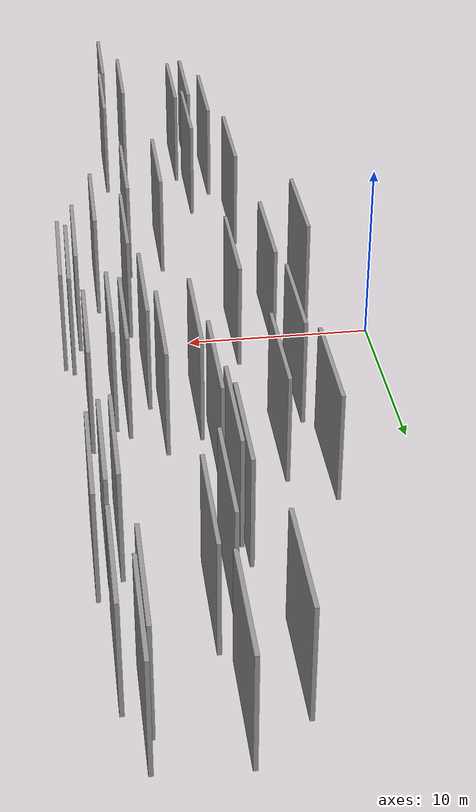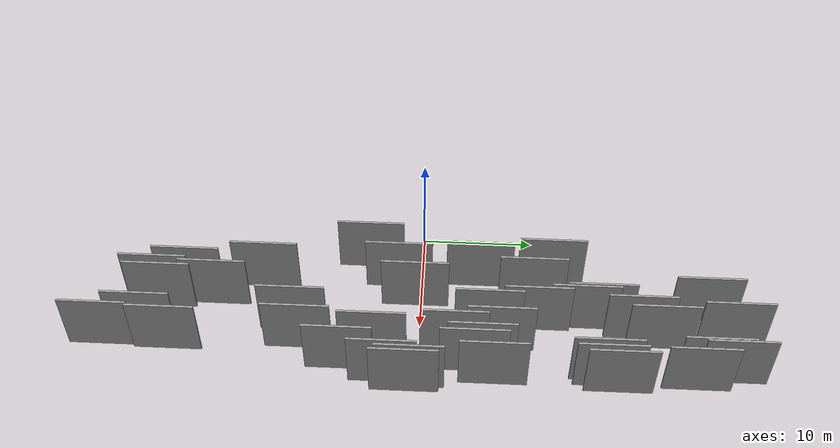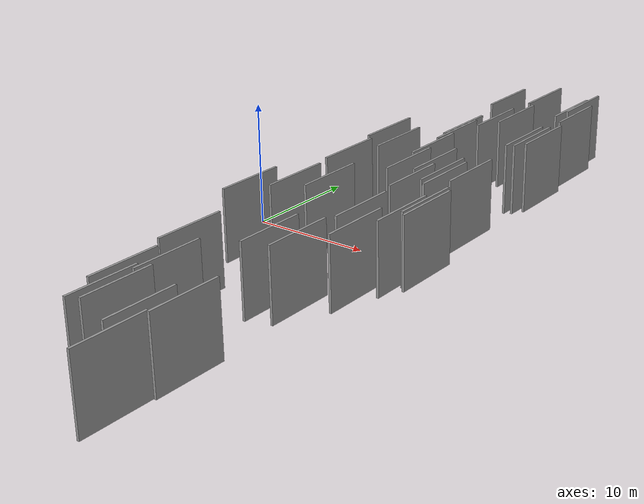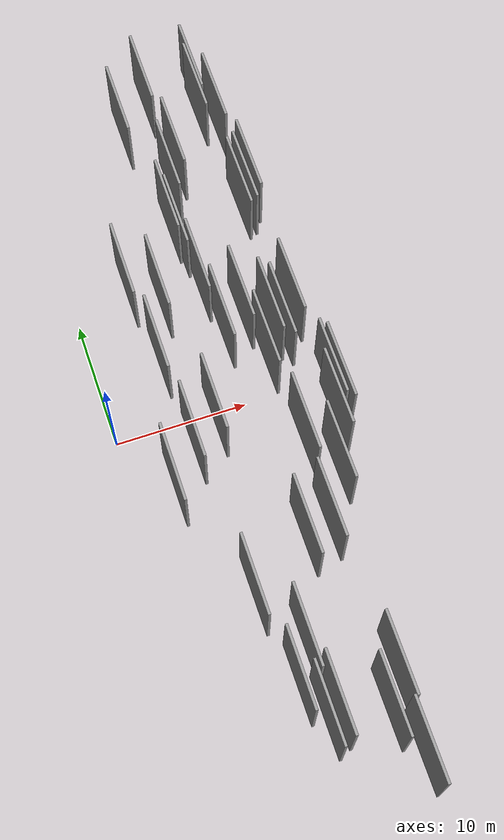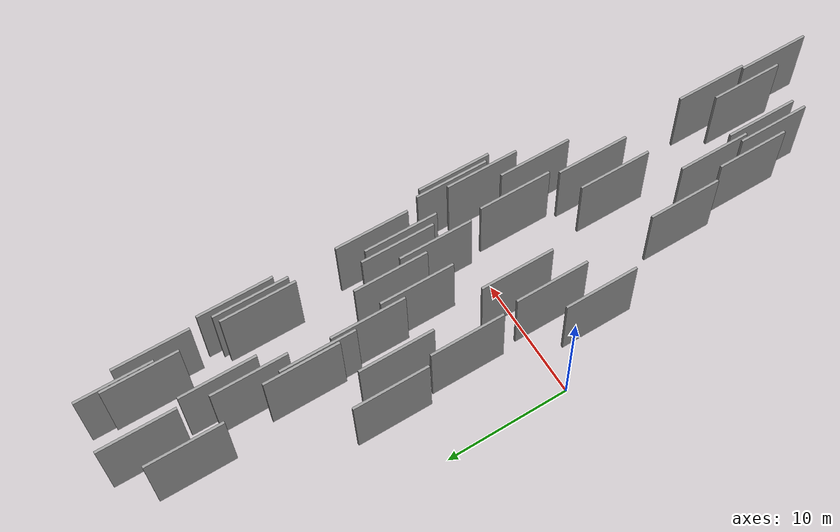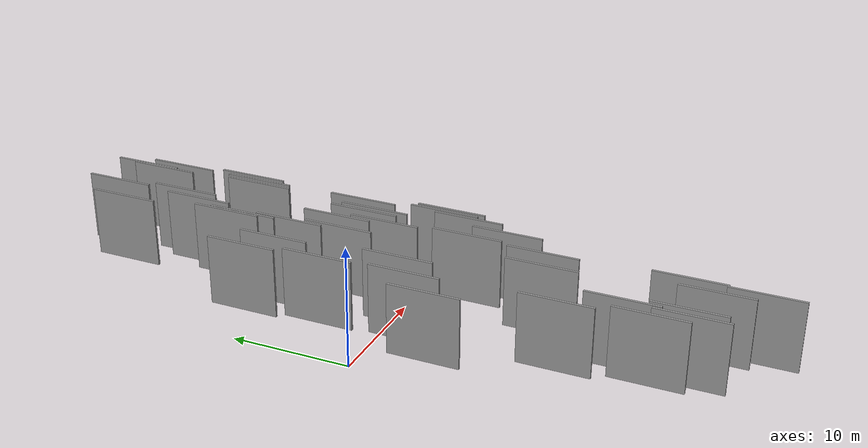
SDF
<sdf version="1.6">
 <world name="default">
  <scene>
   <sky><clouds><speed>12</speed></clouds></sky>
   <ambient>0.4 0.4 0.4 1</ambient>
   <background>0.7 0.7 0.7 1</background>
   <shadows>1</shadows>
  </scene>
  <gravity>0 0 -9.8066</gravity>
  <magnetic_field>6e-06 2.3e-05 -4.2e-05</magnetic_field>
  <physics default="0" name="default_physics" type="ode">
   <ode>
    <solver>
     <type>quick</type>
     <iters>10</iters>
     <sor>1.0</sor>
     <use_dynamic_moi_rescaling>0</use_dynamic_moi_rescaling>
    </solver>
    <constraints>
     <cfm>0</cfm>
     <erp>0.2</erp>
     <contact_max_correcting_vel>100</contact_max_correcting_vel>
     <contact_surface_layer>0.001</contact_surface_layer>
    </constraints>
   </ode>
   <max_step_size>0.004</max_step_size>
   <real_time_factor>1</real_time_factor>
   <real_time_update_rate>250</real_time_update_rate>
  </physics>
  <light name="sun" type="directional">
   <pose>0 0 10 0 0 0</pose>
   <diffuse>0.8 0.8 0.8 1</diffuse>
   <specular>0.2 0.2 0.2 1</specular>
   <attenuation>
    <range>1000</range>
    <constant>0.9</constant>
    <linear>0.01</linear>
    <quadratic>0.001</quadratic>
   </attenuation>
   <direction>-0.5 0.1 -0.9</direction>
  </light>
  <model name="grey_wall_1">
   <static>1</static>
   <pose>10.3094 19.3402 0.0 0.000000 0.000000 1.570796</pose>
   <link name="link">
    <pose>0 0 3.00 0 0 0</pose>
    <collision name="collision"><geometry><box><size>6.00 0.2 6.00</size></box></geometry></collision>
    <visual name="visual">
     <cast_shadows>0</cast_shadows>
     <geometry><box><size>6.00 0.2 6.00</size></box></geometry>
     <material>
      <script>
       <uri>model://grey_wall/materials/scripts</uri>
       <uri>model://grey_wall/materials/textures</uri>
       <name>vrc/grey_wall</name>
      </script>
     </material>
    </visual>
   </link>
  </model>
  <model name="grey_wall_2">
   <static>1</static>
   <pose>15.5724 24.1488 0.0 0.000000 0.000000 1.570796</pose>
   <link name="link">
    <pose>0 0 3.00 0 0 0</pose>
    <collision name="collision"><geometry><box><size>6.00 0.2 6.00</size></box></geometry></collision>
    <visual name="visual">
     <cast_shadows>0</cast_shadows>
     <geometry><box><size>6.00 0.2 6.00</size></box></geometry>
     <material>
      <script>
       <uri>model://grey_wall/materials/scripts</uri>
       <uri>model://grey_wall/materials/textures</uri>
       <name>vrc/grey_wall</name>
      </script>
     </material>
    </visual>
   </link>
  </model>
  <model name="grey_wall_3">
   <static>1</static>
   <pose>9.4070 14.5130 0.0 0.000000 0.000000 1.570796</pose>
   <link name="link">
    <pose>0 0 3.00 0 0 0</pose>
    <collision name="collision"><geometry><box><size>6.00 0.2 6.00</size></box></geometry></collision>
    <visual name="visual">
     <cast_shadows>0</cast_shadows>
     <geometry><box><size>6.00 0.2 6.00</size></box></geometry>
     <material>
      <script>
       <uri>model://grey_wall/materials/scripts</uri>
       <uri>model://grey_wall/materials/textures</uri>
       <name>vrc/grey_wall</name>
      </script>
     </material>
    </visual>
   </link>
  </model>
  <model name="grey_wall_4">
   <static>1</static>
   <pose>16.1431 17.3992 0.0 0.000000 0.000000 1.570796</pose>
   <link name="link">
    <pose>0 0 3.00 0 0 0</pose>
    <collision name="collision"><geometry><box><size>6.00 0.2 6.00</size></box></geometry></collision>
    <visual name="visual">
     <cast_shadows>0</cast_shadows>
     <geometry><box><size>6.00 0.2 6.00</size></box></geometry>
     <material>
      <script>
       <uri>model://grey_wall/materials/scripts</uri>
       <uri>model://grey_wall/materials/textures</uri>
       <name>vrc/grey_wall</name>
      </script>
     </material>
    </visual>
   </link>
  </model>
  <model name="grey_wall_5">
   <static>1</static>
   <pose>16.0255 -2.9704 0.0 0.000000 0.000000 1.570796</pose>
   <link name="link">
    <pose>0 0 3.00 0 0 0</pose>
    <collision name="collision"><geometry><box><size>6.00 0.2 6.00</size></box></geometry></collision>
    <visual name="visual">
     <cast_shadows>0</cast_shadows>
     <geometry><box><size>6.00 0.2 6.00</size></box></geometry>
     <material>
      <script>
       <uri>model://grey_wall/materials/scripts</uri>
       <uri>model://grey_wall/materials/textures</uri>
       <name>vrc/grey_wall</name>
      </script>
     </material>
    </visual>
   </link>
  </model>
  <model name="grey_wall_6">
   <static>1</static>
   <pose>14.6744 27.3157 0.0 0.000000 0.000000 1.570796</pose>
   <link name="link">
    <pose>0 0 3.00 0 0 0</pose>
    <collision name="collision"><geometry><box><size>6.00 0.2 6.00</size></box></geometry></collision>
    <visual name="visual">
     <cast_shadows>0</cast_shadows>
     <geometry><box><size>6.00 0.2 6.00</size></box></geometry>
     <material>
      <script>
       <uri>model://grey_wall/materials/scripts</uri>
       <uri>model://grey_wall/materials/textures</uri>
       <name>vrc/grey_wall</name>
      </script>
     </material>
    </visual>
   </link>
  </model>
  <model name="grey_wall_7">
   <static>1</static>
   <pose>8.1750 -18.4370 0.0 0.000000 0.000000 1.570796</pose>
   <link name="link">
    <pose>0 0 3.00 0 0 0</pose>
    <collision name="collision"><geometry><box><size>6.00 0.2 6.00</size></box></geometry></collision>
    <visual name="visual">
     <cast_shadows>0</cast_shadows>
     <geometry><box><size>6.00 0.2 6.00</size></box></geometry>
     <material>
      <script>
       <uri>model://grey_wall/materials/scripts</uri>
       <uri>model://grey_wall/materials/textures</uri>
       <name>vrc/grey_wall</name>
      </script>
     </material>
    </visual>
   </link>
  </model>
  <model name="grey_wall_8">
   <static>1</static>
   <pose>14.5243 4.8752 0.0 0.000000 0.000000 1.570796</pose>
   <link name="link">
    <pose>0 0 3.00 0 0 0</pose>
    <collision name="collision"><geometry><box><size>6.00 0.2 6.00</size></box></geometry></collision>
    <visual name="visual">
     <cast_shadows>0</cast_shadows>
     <geometry><box><size>6.00 0.2 6.00</size></box></geometry>
     <material>
      <script>
       <uri>model://grey_wall/materials/scripts</uri>
       <uri>model://grey_wall/materials/textures</uri>
       <name>vrc/grey_wall</name>
      </script>
     </material>
    </visual>
   </link>
  </model>
  <model name="grey_wall_9">
   <static>1</static>
   <pose>16.4626 -0.6088 0.0 0.000000 0.000000 1.570796</pose>
   <link name="link">
    <pose>0 0 3.00 0 0 0</pose>
    <collision name="collision"><geometry><box><size>6.00 0.2 6.00</size></box></geometry></collision>
    <visual name="visual">
     <cast_shadows>0</cast_shadows>
     <geometry><box><size>6.00 0.2 6.00</size></box></geometry>
     <material>
      <script>
       <uri>model://grey_wall/materials/scripts</uri>
       <uri>model://grey_wall/materials/textures</uri>
       <name>vrc/grey_wall</name>
      </script>
     </material>
    </visual>
   </link>
  </model>
  <model name="grey_wall_10">
   <static>1</static>
   <pose>6.5493 9.9806 0.0 0.000000 0.000000 1.570796</pose>
   <link name="link">
    <pose>0 0 3.00 0 0 0</pose>
    <collision name="collision"><geometry><box><size>6.00 0.2 6.00</size></box></geometry></collision>
    <visual name="visual">
     <cast_shadows>0</cast_shadows>
     <geometry><box><size>6.00 0.2 6.00</size></box></geometry>
     <material>
      <script>
       <uri>model://grey_wall/materials/scripts</uri>
       <uri>model://grey_wall/materials/textures</uri>
       <name>vrc/grey_wall</name>
      </script>
     </material>
    </visual>
   </link>
  </model>
  <model name="grey_wall_11">
   <static>1</static>
   <pose>15.8029 6.5562 0.0 0.000000 0.000000 1.570796</pose>
   <link name="link">
    <pose>0 0 3.00 0 0 0</pose>
    <collision name="collision"><geometry><box><size>6.00 0.2 6.00</size></box></geometry></collision>
    <visual name="visual">
     <cast_shadows>0</cast_shadows>
     <geometry><box><size>6.00 0.2 6.00</size></box></geometry>
     <material>
      <script>
       <uri>model://grey_wall/materials/scripts</uri>
       <uri>model://grey_wall/materials/textures</uri>
       <name>vrc/grey_wall</name>
      </script>
     </material>
    </visual>
   </link>
  </model>
  <model name="grey_wall_12">
   <static>1</static>
   <pose>7.5150 -0.5313 0.0 0.000000 0.000000 1.570796</pose>
   <link name="link">
    <pose>0 0 3.00 0 0 0</pose>
    <collision name="collision"><geometry><box><size>6.00 0.2 6.00</size></box></geometry></collision>
    <visual name="visual">
     <cast_shadows>0</cast_shadows>
     <geometry><box><size>6.00 0.2 6.00</size></box></geometry>
     <material>
      <script>
       <uri>model://grey_wall/materials/scripts</uri>
       <uri>model://grey_wall/materials/textures</uri>
       <name>vrc/grey_wall</name>
      </script>
     </material>
    </visual>
   </link>
  </model>
  <model name="grey_wall_13">
   <static>1</static>
   <pose>8.7044 -23.2994 0.0 0.000000 0.000000 1.570796</pose>
   <link name="link">
    <pose>0 0 3.00 0 0 0</pose>
    <collision name="collision"><geometry><box><size>6.00 0.2 6.00</size></box></geometry></collision>
    <visual name="visual">
     <cast_shadows>0</cast_shadows>
     <geometry><box><size>6.00 0.2 6.00</size></box></geometry>
     <material>
      <script>
       <uri>model://grey_wall/materials/scripts</uri>
       <uri>model://grey_wall/materials/textures</uri>
       <name>vrc/grey_wall</name>
      </script>
     </material>
    </visual>
   </link>
  </model>
  <model name="grey_wall_14">
   <static>1</static>
   <pose>11.2874 21.2249 0.0 0.000000 0.000000 1.570796</pose>
   <link name="link">
    <pose>0 0 3.00 0 0 0</pose>
    <collision name="collision"><geometry><box><size>6.00 0.2 6.00</size></box></geometry></collision>
    <visual name="visual">
     <cast_shadows>0</cast_shadows>
     <geometry><box><size>6.00 0.2 6.00</size></box></geometry>
     <material>
      <script>
       <uri>model://grey_wall/materials/scripts</uri>
       <uri>model://grey_wall/materials/textures</uri>
       <name>vrc/grey_wall</name>
      </script>
     </material>
    </visual>
   </link>
  </model>
  <model name="grey_wall_15">
   <static>1</static>
   <pose>10.7463 -11.2296 0.0 0.000000 0.000000 1.570796</pose>
   <link name="link">
    <pose>0 0 3.00 0 0 0</pose>
    <collision name="collision"><geometry><box><size>6.00 0.2 6.00</size></box></geometry></collision>
    <visual name="visual">
     <cast_shadows>0</cast_shadows>
     <geometry><box><size>6.00 0.2 6.00</size></box></geometry>
     <material>
      <script>
       <uri>model://grey_wall/materials/scripts</uri>
       <uri>model://grey_wall/materials/textures</uri>
       <name>vrc/grey_wall</name>
      </script>
     </material>
    </visual>
   </link>
  </model>
  <model name="grey_wall_16">
   <static>1</static>
   <pose>15.5581 16.4812 0.0 0.000000 0.000000 1.570796</pose>
   <link name="link">
    <pose>0 0 3.00 0 0 0</pose>
    <collision name="collision"><geometry><box><size>6.00 0.2 6.00</size></box></geometry></collision>
    <visual name="visual">
     <cast_shadows>0</cast_shadows>
     <geometry><box><size>6.00 0.2 6.00</size></box></geometry>
     <material>
      <script>
       <uri>model://grey_wall/materials/scripts</uri>
       <uri>model://grey_wall/materials/textures</uri>
       <name>vrc/grey_wall</name>
      </script>
     </material>
    </visual>
   </link>
  </model>
  <model name="grey_wall_17">
   <static>1</static>
   <pose>13.8614 5.5422 0.0 0.000000 0.000000 1.570796</pose>
   <link name="link">
    <pose>0 0 3.00 0 0 0</pose>
    <collision name="collision"><geometry><box><size>6.00 0.2 6.00</size></box></geometry></collision>
    <visual name="visual">
     <cast_shadows>0</cast_shadows>
     <geometry><box><size>6.00 0.2 6.00</size></box></geometry>
     <material>
      <script>
       <uri>model://grey_wall/materials/scripts</uri>
       <uri>model://grey_wall/materials/textures</uri>
       <name>vrc/grey_wall</name>
      </script>
     </material>
    </visual>
   </link>
  </model>
  <model name="grey_wall_18">
   <static>1</static>
   <pose>10.6672 27.5425 0.0 0.000000 0.000000 1.570796</pose>
   <link name="link">
    <pose>0 0 3.00 0 0 0</pose>
    <collision name="collision"><geometry><box><size>6.00 0.2 6.00</size></box></geometry></collision>
    <visual name="visual">
     <cast_shadows>0</cast_shadows>
     <geometry><box><size>6.00 0.2 6.00</size></box></geometry>
     <material>
      <script>
       <uri>model://grey_wall/materials/scripts</uri>
       <uri>model://grey_wall/materials/textures</uri>
       <name>vrc/grey_wall</name>
      </script>
     </material>
    </visual>
   </link>
  </model>
  <model name="grey_wall_19">
   <static>1</static>
   <pose>9.7678 10.3473 0.0 0.000000 0.000000 1.570796</pose>
   <link name="link">
    <pose>0 0 3.00 0 0 0</pose>
    <collision name="collision"><geometry><box><size>6.00 0.2 6.00</size></box></geometry></collision>
    <visual name="visual">
     <cast_shadows>0</cast_shadows>
     <geometry><box><size>6.00 0.2 6.00</size></box></geometry>
     <material>
      <script>
       <uri>model://grey_wall/materials/scripts</uri>
       <uri>model://grey_wall/materials/textures</uri>
       <name>vrc/grey_wall</name>
      </script>
     </material>
    </visual>
   </link>
  </model>
  <model name="grey_wall_20">
   <static>1</static>
   <pose>5.9599 -14.0847 0.0 0.000000 0.000000 1.570796</pose>
   <link name="link">
    <pose>0 0 3.00 0 0 0</pose>
    <collision name="collision"><geometry><box><size>6.00 0.2 6.00</size></box></geometry></collision>
    <visual name="visual">
     <cast_shadows>0</cast_shadows>
     <geometry><box><size>6.00 0.2 6.00</size></box></geometry>
     <material>
      <script>
       <uri>model://grey_wall/materials/scripts</uri>
       <uri>model://grey_wall/materials/textures</uri>
       <name>vrc/grey_wall</name>
      </script>
     </material>
    </visual>
   </link>
  </model>
  <model name="grey_wall_21">
   <static>1</static>
   <pose>4.3697 11.6855 0.0 0.000000 0.000000 1.570796</pose>
   <link name="link">
    <pose>0 0 3.00 0 0 0</pose>
    <collision name="collision"><geometry><box><size>6.00 0.2 6.00</size></box></geometry></collision>
    <visual name="visual">
     <cast_shadows>0</cast_shadows>
     <geometry><box><size>6.00 0.2 6.00</size></box></geometry>
     <material>
      <script>
       <uri>model://grey_wall/materials/scripts</uri>
       <uri>model://grey_wall/materials/textures</uri>
       <name>vrc/grey_wall</name>
      </script>
     </material>
    </visual>
   </link>
  </model>
  <model name="grey_wall_22">
   <static>1</static>
   <pose>14.9804 16.1859 0.0 0.000000 0.000000 1.570796</pose>
   <link name="link">
    <pose>0 0 3.00 0 0 0</pose>
    <collision name="collision"><geometry><box><size>6.00 0.2 6.00</size></box></geometry></collision>
    <visual name="visual">
     <cast_shadows>0</cast_shadows>
     <geometry><box><size>6.00 0.2 6.00</size></box></geometry>
     <material>
      <script>
       <uri>model://grey_wall/materials/scripts</uri>
       <uri>model://grey_wall/materials/textures</uri>
       <name>vrc/grey_wall</name>
      </script>
     </material>
    </visual>
   </link>
  </model>
  <model name="grey_wall_23">
   <static>1</static>
   <pose>13.3998 -22.1468 0.0 0.000000 0.000000 1.570796</pose>
   <link name="link">
    <pose>0 0 3.00 0 0 0</pose>
    <collision name="collision"><geometry><box><size>6.00 0.2 6.00</size></box></geometry></collision>
    <visual name="visual">
     <cast_shadows>0</cast_shadows>
     <geometry><box><size>6.00 0.2 6.00</size></box></geometry>
     <material>
      <script>
       <uri>model://grey_wall/materials/scripts</uri>
       <uri>model://grey_wall/materials/textures</uri>
       <name>vrc/grey_wall</name>
      </script>
     </material>
    </visual>
   </link>
  </model>
  <model name="grey_wall_24">
   <static>1</static>
   <pose>14.8106 -6.8462 0.0 0.000000 0.000000 1.570796</pose>
   <link name="link">
    <pose>0 0 3.00 0 0 0</pose>
    <collision name="collision"><geometry><box><size>6.00 0.2 6.00</size></box></geometry></collision>
    <visual name="visual">
     <cast_shadows>0</cast_shadows>
     <geometry><box><size>6.00 0.2 6.00</size></box></geometry>
     <material>
      <script>
       <uri>model://grey_wall/materials/scripts</uri>
       <uri>model://grey_wall/materials/textures</uri>
       <name>vrc/grey_wall</name>
      </script>
     </material>
    </visual>
   </link>
  </model>
  <model name="grey_wall_25">
   <static>1</static>
   <pose>6.8093 -20.9830 0.0 0.000000 0.000000 1.570796</pose>
   <link name="link">
    <pose>0 0 3.00 0 0 0</pose>
    <collision name="collision"><geometry><box><size>6.00 0.2 6.00</size></box></geometry></collision>
    <visual name="visual">
     <cast_shadows>0</cast_shadows>
     <geometry><box><size>6.00 0.2 6.00</size></box></geometry>
     <material>
      <script>
       <uri>model://grey_wall/materials/scripts</uri>
       <uri>model://grey_wall/materials/textures</uri>
       <name>vrc/grey_wall</name>
      </script>
     </material>
    </visual>
   </link>
  </model>
  <model name="grey_wall_26">
   <static>1</static>
   <pose>12.6789 3.0873 0.0 0.000000 0.000000 1.570796</pose>
   <link name="link">
    <pose>0 0 3.00 0 0 0</pose>
    <collision name="collision"><geometry><box><size>6.00 0.2 6.00</size></box></geometry></collision>
    <visual name="visual">
     <cast_shadows>0</cast_shadows>
     <geometry><box><size>6.00 0.2 6.00</size></box></geometry>
     <material>
      <script>
       <uri>model://grey_wall/materials/scripts</uri>
       <uri>model://grey_wall/materials/textures</uri>
       <name>vrc/grey_wall</name>
      </script>
     </material>
    </visual>
   </link>
  </model>
  <model name="grey_wall_27">
   <static>1</static>
   <pose>3.1186 -4.7022 0.0 0.000000 0.000000 1.570796</pose>
   <link name="link">
    <pose>0 0 3.00 0 0 0</pose>
    <collision name="collision"><geometry><box><size>6.00 0.2 6.00</size></box></geometry></collision>
    <visual name="visual">
     <cast_shadows>0</cast_shadows>
     <geometry><box><size>6.00 0.2 6.00</size></box></geometry>
     <material>
      <script>
       <uri>model://grey_wall/materials/scripts</uri>
       <uri>model://grey_wall/materials/textures</uri>
       <name>vrc/grey_wall</name>
      </script>
     </material>
    </visual>
   </link>
  </model>
  <model name="grey_wall_28">
   <static>1</static>
   <pose>9.1477 15.9242 0.0 0.000000 0.000000 1.570796</pose>
   <link name="link">
    <pose>0 0 3.00 0 0 0</pose>
    <collision name="collision"><geometry><box><size>6.00 0.2 6.00</size></box></geometry></collision>
    <visual name="visual">
     <cast_shadows>0</cast_shadows>
     <geometry><box><size>6.00 0.2 6.00</size></box></geometry>
     <material>
      <script>
       <uri>model://grey_wall/materials/scripts</uri>
       <uri>model://grey_wall/materials/textures</uri>
       <name>vrc/grey_wall</name>
      </script>
     </material>
    </visual>
   </link>
  </model>
  <model name="grey_wall_29">
   <static>1</static>
   <pose>4.9890 5.2255 0.0 0.000000 0.000000 1.570796</pose>
   <link name="link">
    <pose>0 0 3.00 0 0 0</pose>
    <collision name="collision"><geometry><box><size>6.00 0.2 6.00</size></box></geometry></collision>
    <visual name="visual">
     <cast_shadows>0</cast_shadows>
     <geometry><box><size>6.00 0.2 6.00</size></box></geometry>
     <material>
      <script>
       <uri>model://grey_wall/materials/scripts</uri>
       <uri>model://grey_wall/materials/textures</uri>
       <name>vrc/grey_wall</name>
      </script>
     </material>
    </visual>
   </link>
  </model>
  <model name="grey_wall_30">
   <static>1</static>
   <pose>13.1667 -4.0107 0.0 0.000000 0.000000 1.570796</pose>
   <link name="link">
    <pose>0 0 3.00 0 0 0</pose>
    <collision name="collision"><geometry><box><size>6.00 0.2 6.00</size></box></geometry></collision>
    <visual name="visual">
     <cast_shadows>0</cast_shadows>
     <geometry><box><size>6.00 0.2 6.00</size></box></geometry>
     <material>
      <script>
       <uri>model://grey_wall/materials/scripts</uri>
       <uri>model://grey_wall/materials/textures</uri>
       <name>vrc/grey_wall</name>
      </script>
     </material>
    </visual>
   </link>
  </model>
  <model name="grey_wall_31">
   <static>1</static>
   <pose>16.9046 -1.0776 0.0 0.000000 0.000000 1.570796</pose>
   <link name="link">
    <pose>0 0 3.00 0 0 0</pose>
    <collision name="collision"><geometry><box><size>6.00 0.2 6.00</size></box></geometry></collision>
    <visual name="visual">
     <cast_shadows>0</cast_shadows>
     <geometry><box><size>6.00 0.2 6.00</size></box></geometry>
     <material>
      <script>
       <uri>model://grey_wall/materials/scripts</uri>
       <uri>model://grey_wall/materials/textures</uri>
       <name>vrc/grey_wall</name>
      </script>
     </material>
    </visual>
   </link>
  </model>
  <model name="grey_wall_32">
   <static>1</static>
   <pose>14.4498 25.5106 0.0 0.000000 0.000000 1.570796</pose>
   <link name="link">
    <pose>0 0 3.00 0 0 0</pose>
    <collision name="collision"><geometry><box><size>6.00 0.2 6.00</size></box></geometry></collision>
    <visual name="visual">
     <cast_shadows>0</cast_shadows>
     <geometry><box><size>6.00 0.2 6.00</size></box></geometry>
     <material>
      <script>
       <uri>model://grey_wall/materials/scripts</uri>
       <uri>model://grey_wall/materials/textures</uri>
       <name>vrc/grey_wall</name>
      </script>
     </material>
    </visual>
   </link>
  </model>
  <model name="grey_wall_33">
   <static>1</static>
   <pose>12.1053 7.1483 0.0 0.000000 0.000000 1.570796</pose>
   <link name="link">
    <pose>0 0 3.00 0 0 0</pose>
    <collision name="collision"><geometry><box><size>6.00 0.2 6.00</size></box></geometry></collision>
    <visual name="visual">
     <cast_shadows>0</cast_shadows>
     <geometry><box><size>6.00 0.2 6.00</size></box></geometry>
     <material>
      <script>
       <uri>model://grey_wall/materials/scripts</uri>
       <uri>model://grey_wall/materials/textures</uri>
       <name>vrc/grey_wall</name>
      </script>
     </material>
    </visual>
   </link>
  </model>
  <model name="grey_wall_34">
   <static>1</static>
   <pose>12.0519 -24.5205 0.0 0.000000 0.000000 1.570796</pose>
   <link name="link">
    <pose>0 0 3.00 0 0 0</pose>
    <collision name="collision"><geometry><box><size>6.00 0.2 6.00</size></box></geometry></collision>
    <visual name="visual">
     <cast_shadows>0</cast_shadows>
     <geometry><box><size>6.00 0.2 6.00</size></box></geometry>
     <material>
      <script>
       <uri>model://grey_wall/materials/scripts</uri>
       <uri>model://grey_wall/materials/textures</uri>
       <name>vrc/grey_wall</name>
      </script>
     </material>
    </visual>
   </link>
  </model>
  <model name="grey_wall_35">
   <static>1</static>
   <pose>12.7280 -10.6173 0.0 0.000000 0.000000 1.570796</pose>
   <link name="link">
    <pose>0 0 3.00 0 0 0</pose>
    <collision name="collision"><geometry><box><size>6.00 0.2 6.00</size></box></geometry></collision>
    <visual name="visual">
     <cast_shadows>0</cast_shadows>
     <geometry><box><size>6.00 0.2 6.00</size></box></geometry>
     <material>
      <script>
       <uri>model://grey_wall/materials/scripts</uri>
       <uri>model://grey_wall/materials/textures</uri>
       <name>vrc/grey_wall</name>
      </script>
     </material>
    </visual>
   </link>
  </model>
  <model name="grey_wall_36">
   <static>1</static>
   <pose>7.8096 -23.7312 0.0 0.000000 0.000000 1.570796</pose>
   <link name="link">
    <pose>0 0 3.00 0 0 0</pose>
    <collision name="collision"><geometry><box><size>6.00 0.2 6.00</size></box></geometry></collision>
    <visual name="visual">
     <cast_shadows>0</cast_shadows>
     <geometry><box><size>6.00 0.2 6.00</size></box></geometry>
     <material>
      <script>
       <uri>model://grey_wall/materials/scripts</uri>
       <uri>model://grey_wall/materials/textures</uri>
       <name>vrc/grey_wall</name>
      </script>
     </material>
    </visual>
   </link>
  </model>
  <model name="grey_wall_37">
   <static>1</static>
   <pose>10.2777 6.0915 0.0 0.000000 0.000000 1.570796</pose>
   <link name="link">
    <pose>0 0 3.00 0 0 0</pose>
    <collision name="collision"><geometry><box><size>6.00 0.2 6.00</size></box></geometry></collision>
    <visual name="visual">
     <cast_shadows>0</cast_shadows>
     <geometry><box><size>6.00 0.2 6.00</size></box></geometry>
     <material>
      <script>
       <uri>model://grey_wall/materials/scripts</uri>
       <uri>model://grey_wall/materials/textures</uri>
       <name>vrc/grey_wall</name>
      </script>
     </material>
    </visual>
   </link>
  </model>
  <model name="grey_wall_38">
   <static>1</static>
   <pose>13.1802 -27.9959 0.0 0.000000 0.000000 1.570796</pose>
   <link name="link">
    <pose>0 0 3.00 0 0 0</pose>
    <collision name="collision"><geometry><box><size>6.00 0.2 6.00</size></box></geometry></collision>
    <visual name="visual">
     <cast_shadows>0</cast_shadows>
     <geometry><box><size>6.00 0.2 6.00</size></box></geometry>
     <material>
      <script>
       <uri>model://grey_wall/materials/scripts</uri>
       <uri>model://grey_wall/materials/textures</uri>
       <name>vrc/grey_wall</name>
      </script>
     </material>
    </visual>
   </link>
  </model>
  <model name="grey_wall_39">
   <static>1</static>
   <pose>5.3767 -2.0557 0.0 0.000000 0.000000 1.570796</pose>
   <link name="link">
    <pose>0 0 3.00 0 0 0</pose>
    <collision name="collision"><geometry><box><size>6.00 0.2 6.00</size></box></geometry></collision>
    <visual name="visual">
     <cast_shadows>0</cast_shadows>
     <geometry><box><size>6.00 0.2 6.00</size></box></geometry>
     <material>
      <script>
       <uri>model://grey_wall/materials/scripts</uri>
       <uri>model://grey_wall/materials/textures</uri>
       <name>vrc/grey_wall</name>
      </script>
     </material>
    </visual>
   </link>
  </model>
  <model name="grey_wall_40">
   <static>1</static>
   <pose>8.0659 25.3157 0.0 0.000000 0.000000 1.570796</pose>
   <link name="link">
    <pose>0 0 3.00 0 0 0</pose>
    <collision name="collision"><geometry><box><size>6.00 0.2 6.00</size></box></geometry></collision>
    <visual name="visual">
     <cast_shadows>0</cast_shadows>
     <geometry><box><size>6.00 0.2 6.00</size></box></geometry>
     <material>
      <script>
       <uri>model://grey_wall/materials/scripts</uri>
       <uri>model://grey_wall/materials/textures</uri>
       <name>vrc/grey_wall</name>
      </script>
     </material>
    </visual>
   </link>
  </model>
 </world>
</sdf>
